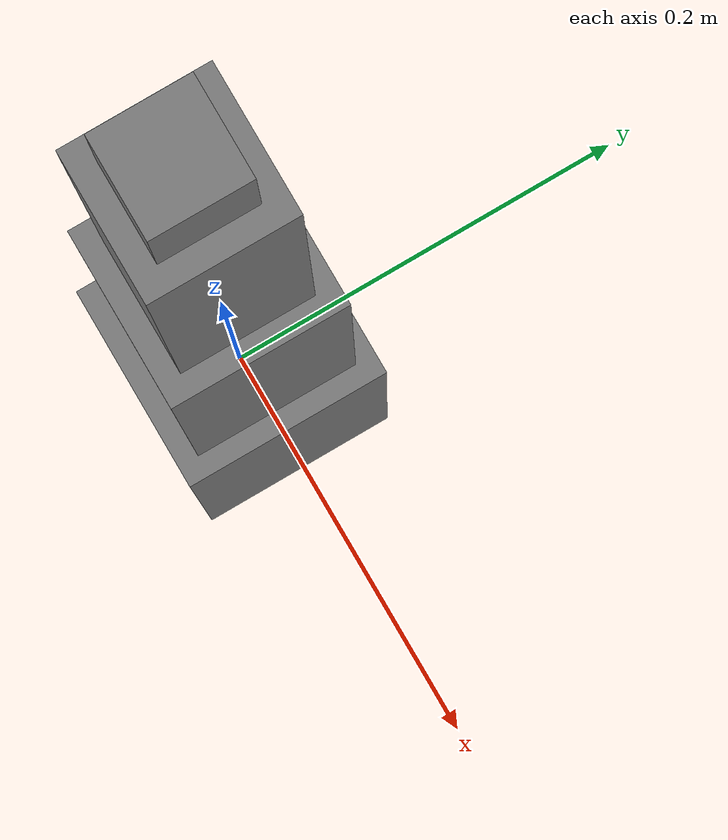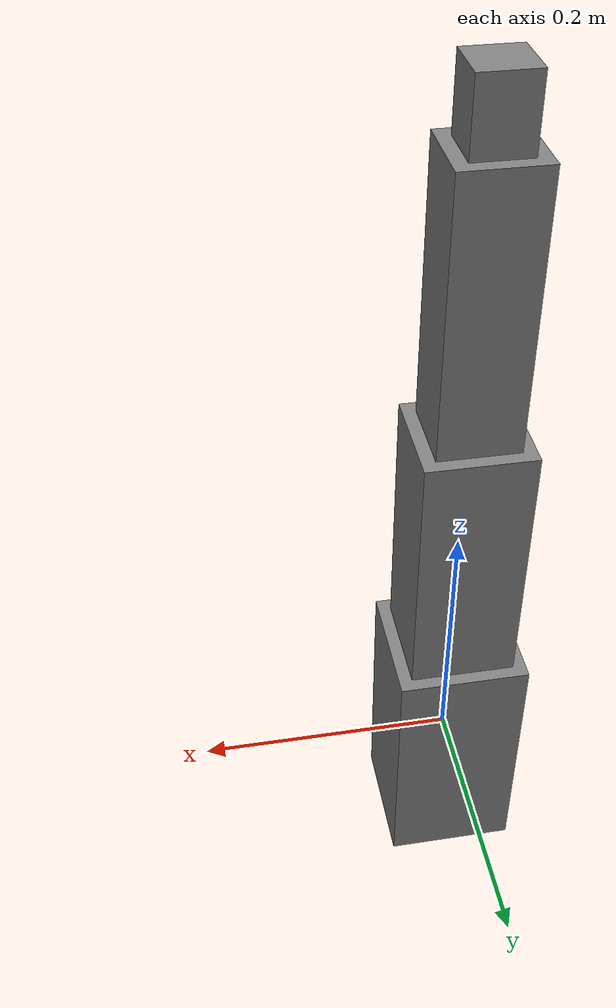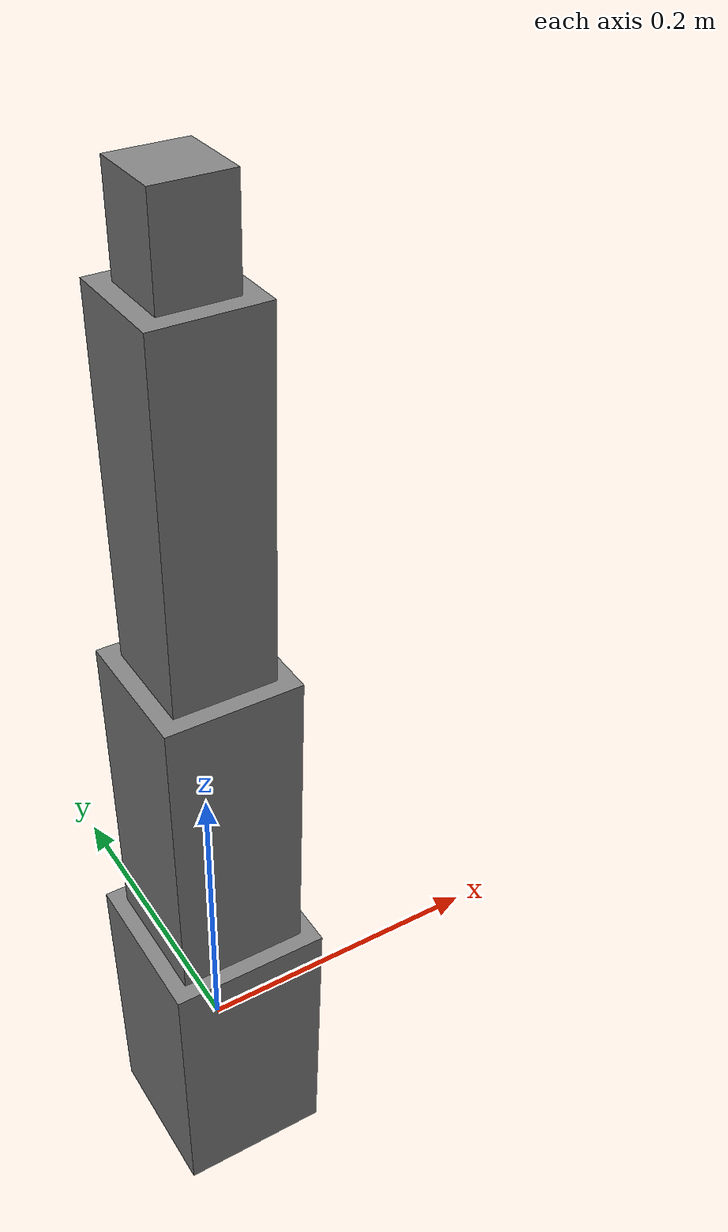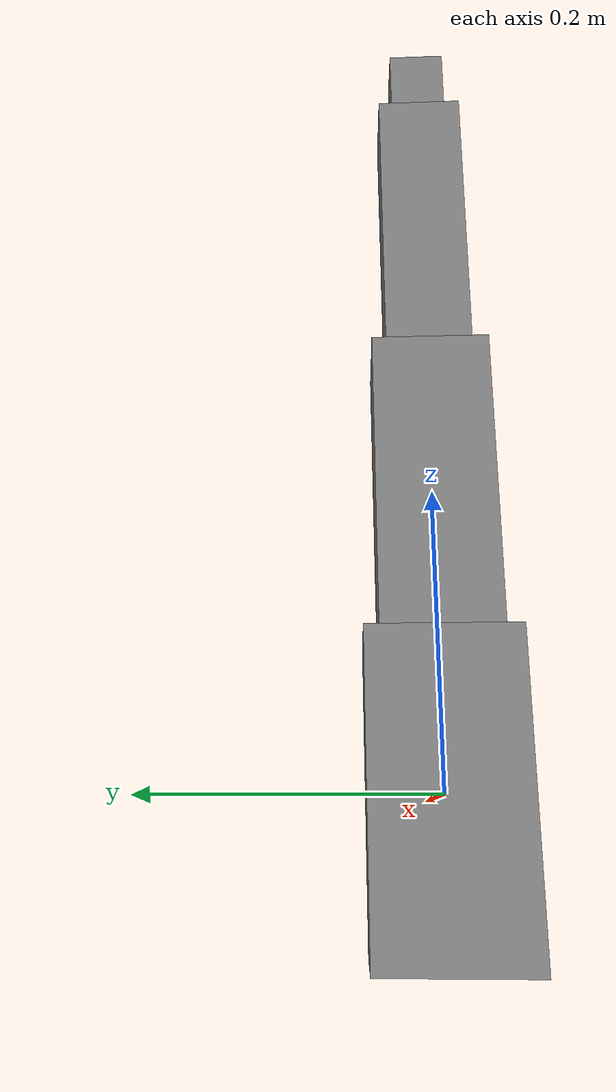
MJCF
<mujoco>
    <worldbody>
        <light pos="0 0 3" dir="0 0 -1" diffuse="1 1 1"/>

        <!-- Define a simple robotic arm -->
        <body name="base" pos="0 0 0">
            <joint name="base_rotate" type="hinge" axis="0 0 1"/>
            <geom type="box" size="0.05 0.05 0.1"/>

            <body name="arm" pos="0 0 0.1">
                <joint name="arm_flex" type="hinge" axis="1 0 0" range="-1.57 1.57"/>
                <geom type="box" size="0.04 0.04 0.2"/>

                <body name="forearm" pos="0 0 0.2">
                    <joint name="elbow_flex" type="hinge" axis="1 0 0" range="-1.57 1.57"/>
                    <geom type="box" size="0.03 0.03 0.2"/>

                    <!-- Define the hand or end effector -->
                    <body name="hand" pos="0 0 0.2">
                        <joint name="wrist_flex" type="hinge" axis="1 0 0" range="-1.57 1.57"/>
                        <geom type="box" size="0.02 0.02 0.05"/>
                    </body>
                </body>
            </body>
        </body>
    </worldbody>
    <actuator>
        <!-- Actuator for the base rotation -->
        <motor joint="base_rotate" name="act_base_rotate" gear="100"/>

        <!-- Actuator for the arm flexion -->
        <motor joint="arm_flex" name="act_arm_flex" gear="100"/>

        <!-- Actuator for the elbow flexion -->
        <motor joint="elbow_flex" name="act_elbow_flex" gear="100"/>

        <!-- Actuator for the wrist flexion -->
        <motor joint="wrist_flex" name="act_wrist_flex" gear="100"/>
    </actuator>
</mujoco>
